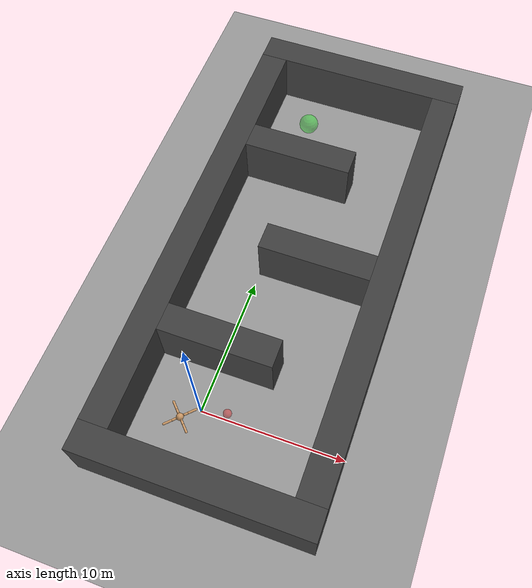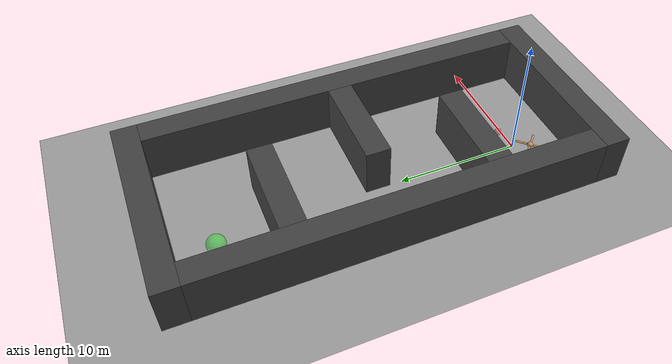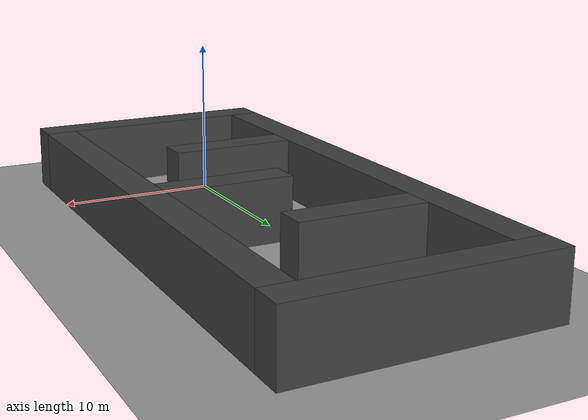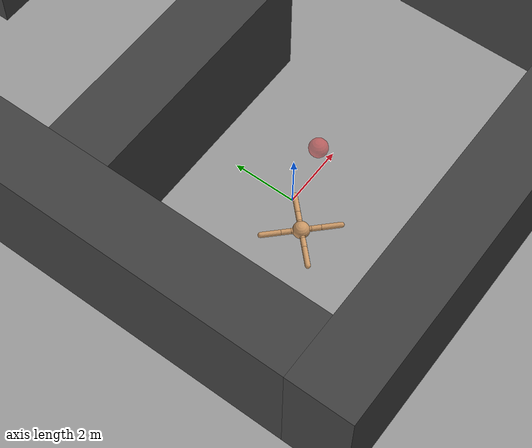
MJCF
<mujoco model="ant">
  <compiler angle="degree" coordinate="local" inertiafromgeom="true"/>
  <option integrator="RK4" timestep="0.01"/>
  <custom>
    <numeric data="0.0 0.0 0.55 1.0 0.0 0.0 0.0 0.0 1.0 0.0 -1.0 0.0 -1.0 0.0 1.0" name="init_qpos"/>
  </custom>
  <default>
    <joint armature="1" damping="1" limited="true"/>
    <geom conaffinity="0" condim="3" density="5.0" friction="1 0.5 0.5" margin="0.01" rgba="0.8 0.6 0.4 1"/>
  </default>
  <asset>
    <texture builtin="gradient" height="100" rgb1="1 1 1" rgb2="0 0 0" type="skybox" width="100"/>
    <texture builtin="flat" height="1278" mark="cross" markrgb="1 1 1" name="texgeom" random="0.01" rgb1="0.8 0.6 0.4" rgb2="0.8 0.6 0.4" type="cube" width="127"/>
    <texture builtin="checker" height="100" name="texplane" rgb1="0 0 0" rgb2="0.8 0.8 0.8" type="2d" width="100"/>
    <material name="MatPlane" reflectance="0.5" shininess="1" specular="1" texrepeat="60 60" texture="texplane"/>
    <material name="geom" texture="texgeom" texuniform="true"/>
  </asset>
  <worldbody>
    <light cutoff="100" diffuse="1 1 1" dir="-0 0 -1.3" directional="true" exponent="1" pos="0 0 1.3" specular=".1 .1 .1"/>
    <geom conaffinity="1" condim="3" name="floor" material="" pos="0 0 0" rgba="0.6 0.6 0.6 1" size="40 40 40" type="plane"/>

    <geom pos="-5 12 2" size="1 16 2" contype="1" conaffinity="1" name="wall_1" type="box" material="" rgba="0.25 0.25 0.25 1"/>
    <geom pos="9 12 2" size="1 16 2" contype="1" conaffinity="1" name="wall_2" type="box" material="" rgba="0.25 0.25 0.25 1"/>
    <geom pos="2 -5 2" size="8 1 2" contype="1" conaffinity="1" name="wall_3" type="box" material="" rgba="0.25 0.25 0.25 1"/>
    <geom pos="2 29 2" size="8 1 2" contype="1" conaffinity="1" name="wall_4" type="box" material="" rgba="0.25 0.25 0.25 1"/>

    <!-- Inner Walls -->
    <geom pos="0 4 2" size="4 1 2" contype="1" conaffinity="1" name="cross_1" type="box" material="" rgba="0.25 0.25 0.25 1"/>
    <geom pos="4 12 2" size="4 1 2" contype="1" conaffinity="1" name="cross_2" type="box" material="" rgba="0.25 0.25 0.25 1"/>
    <geom pos="0 20 2" size="4 1 2" contype="1" conaffinity="1" name="cross_3" type="box" material="" rgba="0.25 0.25 0.25 1"/>

    <body name="torso" pos="-1 -1 0.75">
      <camera name="track" mode="trackcom" pos="0 -3 0.3" xyaxes="1 0 0 0 0 1"/>
      <geom name="torso_geom" pos="0 0 0" size="0.25" type="sphere"/>
      <joint armature="0" damping="0" limited="false" margin="0.01" name="root" pos="0 0 0" type="free"/>
      <body name="front_left_leg" pos="0 0 0">
        <geom fromto="0.0 0.0 0.0 0.2 0.2 0.0" name="aux_1_geom" size="0.08" type="capsule"/>
        <body name="aux_1" pos="0.2 0.2 0">
          <joint axis="0 0 1" name="hip_1" pos="0.0 0.0 0.0" range="-30 30" type="hinge"/>
          <geom fromto="0.0 0.0 0.0 0.2 0.2 0.0" name="left_leg_geom" size="0.08" type="capsule"/>
          <body pos="0.2 0.2 0">
            <joint axis="-1 1 0" name="ankle_1" pos="0.0 0.0 0.0" range="30 70" type="hinge"/>
            <geom fromto="0.0 0.0 0.0 0.4 0.4 0.0" name="left_ankle_geom" size="0.08" type="capsule"/>
          </body>
        </body>
      </body>
      <body name="front_right_leg" pos="0 0 0">
        <geom fromto="0.0 0.0 0.0 -0.2 0.2 0.0" name="aux_2_geom" size="0.08" type="capsule"/>
        <body name="aux_2" pos="-0.2 0.2 0">
          <joint axis="0 0 1" name="hip_2" pos="0.0 0.0 0.0" range="-30 30" type="hinge"/>
          <geom fromto="0.0 0.0 0.0 -0.2 0.2 0.0" name="right_leg_geom" size="0.08" type="capsule"/>
          <body pos="-0.2 0.2 0">
            <joint axis="1 1 0" name="ankle_2" pos="0.0 0.0 0.0" range="-70 -30" type="hinge"/>
            <geom fromto="0.0 0.0 0.0 -0.4 0.4 0.0" name="right_ankle_geom" size="0.08" type="capsule"/>
          </body>
        </body>
      </body>
      <body name="back_leg" pos="0 0 0">
        <geom fromto="0.0 0.0 0.0 -0.2 -0.2 0.0" name="aux_3_geom" size="0.08" type="capsule"/>
        <body name="aux_3" pos="-0.2 -0.2 0">
          <joint axis="0 0 1" name="hip_3" pos="0.0 0.0 0.0" range="-30 30" type="hinge"/>
          <geom fromto="0.0 0.0 0.0 -0.2 -0.2 0.0" name="back_leg_geom" size="0.08" type="capsule"/>
          <body pos="-0.2 -0.2 0">
            <joint axis="-1 1 0" name="ankle_3" pos="0.0 0.0 0.0" range="-70 -30" type="hinge"/>
            <geom fromto="0.0 0.0 0.0 -0.4 -0.4 0.0" name="third_ankle_geom" size="0.08" type="capsule"/>
          </body>
        </body>
      </body>
      <body name="right_back_leg" pos="0 0 0">
        <geom fromto="0.0 0.0 0.0 0.2 -0.2 0.0" name="aux_4_geom" size="0.08" type="capsule"/>
        <body name="aux_4" pos="0.2 -0.2 0">
          <joint axis="0 0 1" name="hip_4" pos="0.0 0.0 0.0" range="-30 30" type="hinge"/>
          <geom fromto="0.0 0.0 0.0 0.2 -0.2 0.0" name="rightback_leg_geom" size="0.08" type="capsule"/>
          <body pos="0.2 -0.2 0">
            <joint axis="1 1 0" name="ankle_4" pos="0.0 0.0 0.0" range="30 70" type="hinge"/>
            <geom fromto="0.0 0.0 0.0 0.4 -0.4 0.0" name="fourth_ankle_geom" size="0.08" type="capsule"/>
          </body>
        </body>
      </body>
    </body>

    <body name="target" pos="-1 25 0.75">
      <geom conaffinity="0" contype="0" name="target" pos="0 0 0" rgba="0.2 0.9 0.2 0.5" size=".75" type="sphere"/>
    </body>

    <body name="highlevel" pos="1.75 0.35 0.3">
      <geom conaffinity="0" contype="0" name="highlevel" pos="0 0 0" rgba="0.9 0.2 0.2 0.5" size=".3" type="sphere"/>
    </body>

  </worldbody>
  <actuator>
    <motor ctrllimited="true" ctrlrange="-1.0 1.0" joint="hip_4" gear="125"/>
    <motor ctrllimited="true" ctrlrange="-1.0 1.0" joint="ankle_4" gear="125"/>
    <motor ctrllimited="true" ctrlrange="-1.0 1.0" joint="hip_1" gear="125"/>
    <motor ctrllimited="true" ctrlrange="-1.0 1.0" joint="ankle_1" gear="125"/>
    <motor ctrllimited="true" ctrlrange="-1.0 1.0" joint="hip_2" gear="125"/>
    <motor ctrllimited="true" ctrlrange="-1.0 1.0" joint="ankle_2" gear="125"/>
    <motor ctrllimited="true" ctrlrange="-1.0 1.0" joint="hip_3" gear="125"/>
    <motor ctrllimited="true" ctrlrange="-1.0 1.0" joint="ankle_3" gear="125"/>
  </actuator>
</mujoco>
